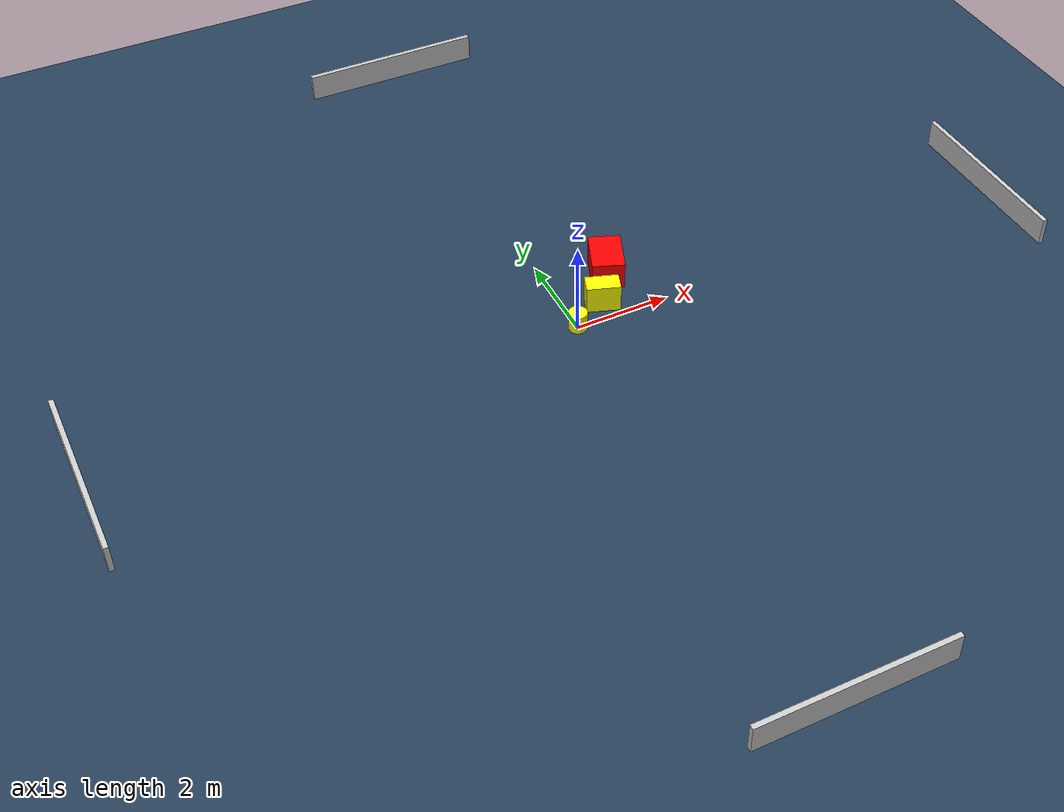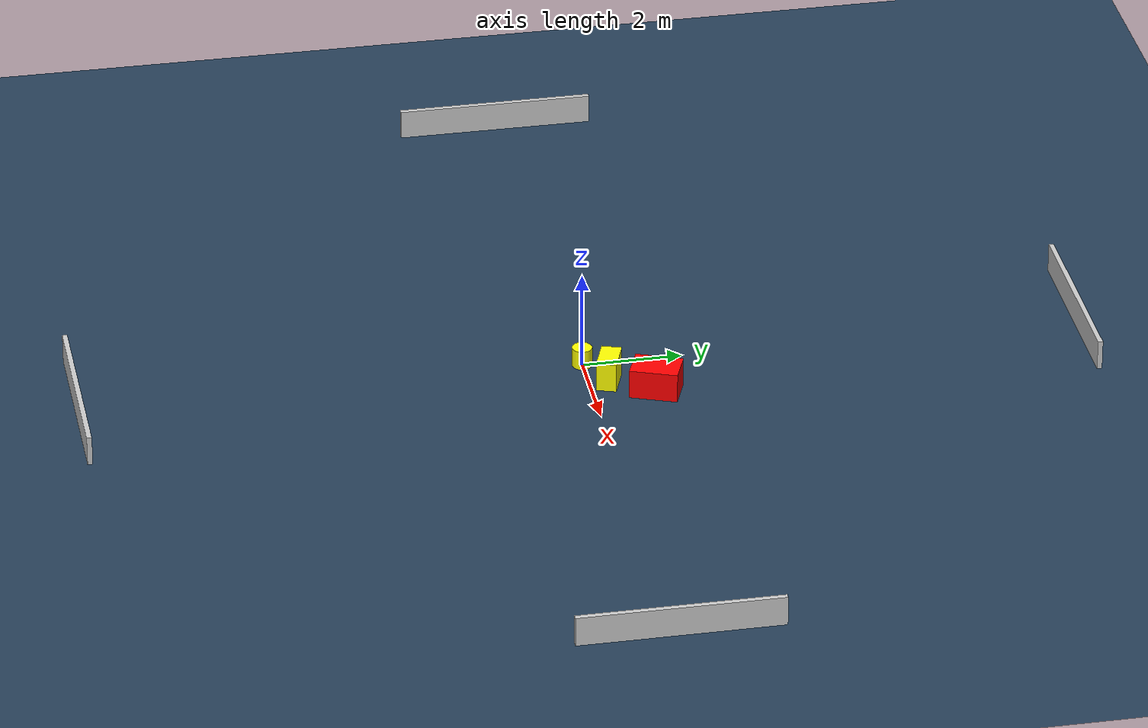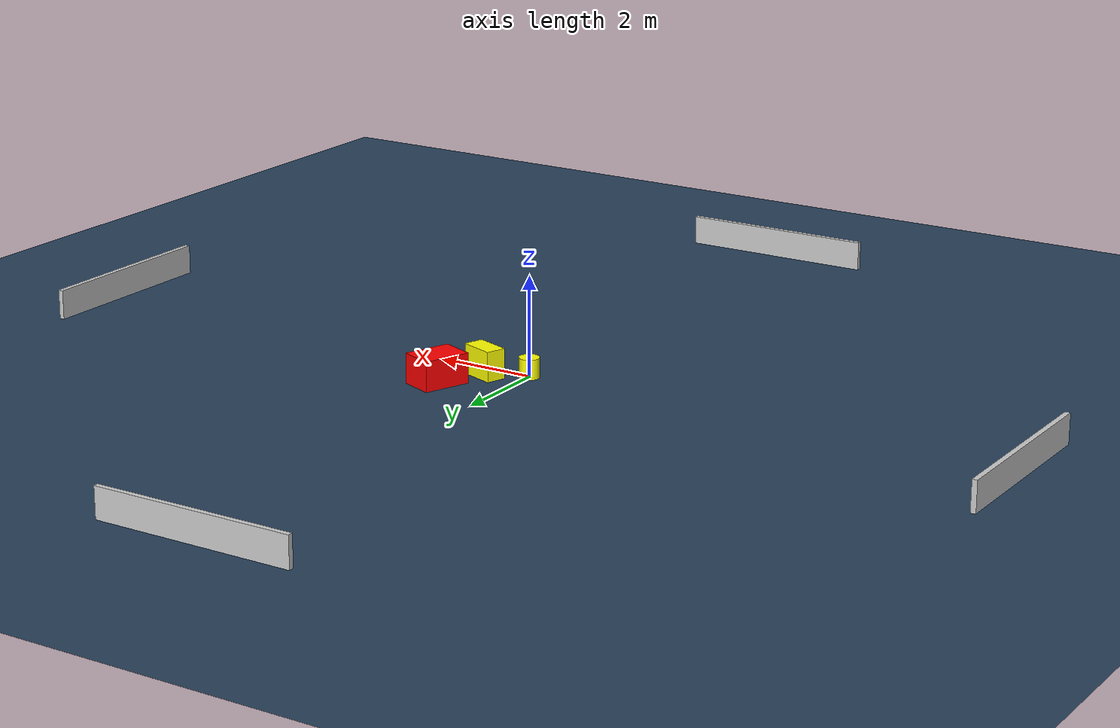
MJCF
<?xml version="1.0" ?>
<mujoco model="generated_environment">
  <option timestep="0.01" integrator="RK4" cone="elliptic"/>
  <default>
    <geom density="1"/>
  </default>
  <asset>
    <texture builtin="gradient" height="3072" name="skybox" rgb1="0.3 0.5 0.7" rgb2="0 0 0" type="skybox" width="512"/>
    <texture builtin="checker" height="300" name="groundplane" rgb1="0.2 0.3 0.4" rgb2="0.1 0.2 0.3" type="2d" width="300"/>
    <material name="groundplane" reflectance="0.2" texrepeat="5 5" texture="groundplane"/>
  </asset>
  <worldbody>
    <light dir="0 0 -1" directional="true" pos="0 0 1.5"/>
    <geom condim="3" friction="0.5 0.005 0.001" material="groundplane" name="floor" pos="0 0 0" size="0 0 0.05" type="plane"/>
    <body name="walls">
      <geom name="wall_1" condim="4" pos="-10.0 0.0 0.3" rgba="0.800000011920929 0.800000011920929 0.800000011920929 1.0" size="0.05 2.0 0.3" type="box"/>
      <geom name="wall_2" condim="4" pos="10.0 0.0 0.3" rgba="0.800000011920929 0.800000011920929 0.800000011920929 1.0" size="0.05 2.0 0.3" type="box"/>
      <geom name="wall_3" condim="4" pos="0.0 -10.0 0.3" rgba="0.800000011920929 0.800000011920929 0.800000011920929 1.0" size="2.0 0.05 0.3" type="box"/>
      <geom name="wall_4" condim="4" pos="0.0 10.0 0.3" rgba="0.800000011920929 0.800000011920929 0.800000011920929 1.0" size="2.0 0.05 0.3" type="box"/>
    </body>
    <body name="robot">
      <joint name="joint_x" type="slide" pos="0 0 0" axis="1 0 0"/>
      <joint name="joint_y" type="slide" pos="0 0 0" axis="0 1 0"/>
      <geom name="robot" type="cylinder" pos="0.0 0.0 0.2" size="0.2 0.2 0.0" mass="5.0" friction="1.0 0.005 0.0001" condim="4" rgba="1.0 1.0 0.0 1.0"/>
    </body>
    <body name="obstacle_1_movable">
      <geom name="obstacle_1_movable" condim="4" pos="0.7536187458793687 0.3952224296590952 0.3" euler="0 0 70.68555276217168" friction="0.0 0.005 0.001" rgba="1.0 1.0 0.0 1.0" size="0.20091374336709095 0.35412581974465684 0.3" type="box" mass="0.1"/>
      <joint type="free"/>
    </body>
    <body name="obstacle_2_static">
      <geom name="obstacle_2_static" condim="4" pos="1.2712720004083398 1.241971324230962 0.3" euler="0 0 158.74850356915556" friction="0.0 0.005 0.001" rgba="1.0 0.0 0.0 1.0" size="0.34072441537543346 0.47807635178682373 0.3" type="box"/>
    </body>
  </worldbody>
  <actuator>
    <motor name="actuator_x" joint="joint_x" gear="1" ctrlrange="-1 1"/>
    <motor name="actuator_y" joint="joint_y" gear="1" ctrlrange="-1 1"/>
  </actuator>
</mujoco>
